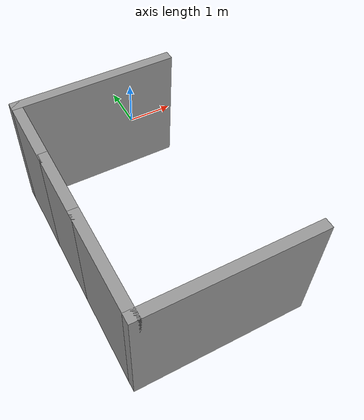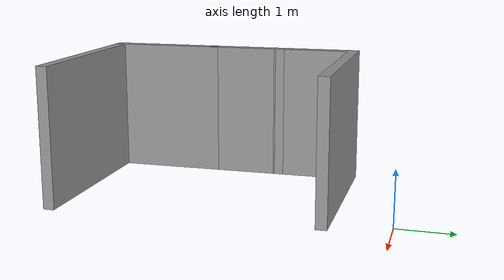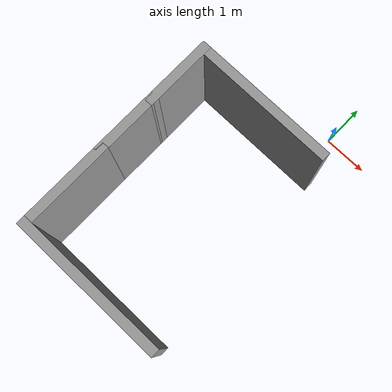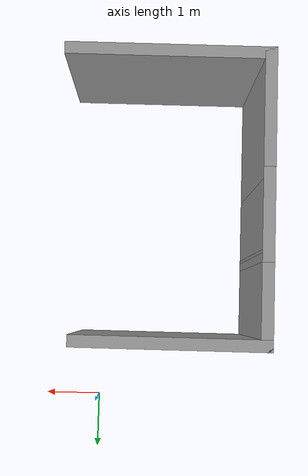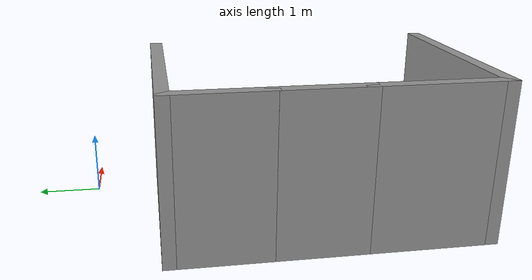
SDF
<sdf version="1.4">
 <world name="default">
  <physics type="ode">
   <max_step_size>0.001</max_step_size>
   <real_time_factor>1</real_time_factor>
   <real_time_update_rate>1000</real_time_update_rate>
   <gravity>0 0 -9.8</gravity>
  </physics>
  <scene><ambient>0.4 0.4 0.4 1</ambient><background>0.7 0.7 0.7 1</background><shadows>1</shadows></scene>
  <spherical_coordinates>
   <surface_model>EARTH_WGS84</surface_model>
   <latitude_deg>0</latitude_deg>
   <longitude_deg>0</longitude_deg>
   <elevation>0</elevation>
   <heading_deg>0</heading_deg>
  </spherical_coordinates>
  <model name="BuildingDefaultName">
   <link name="Wall_0">
    <collision name="Wall_0_Collision">
     <geometry><box><size>3.26 0.2 2.5</size></box></geometry>
     <pose>0 0 1.25 0 -0 0</pose>
    </collision>
    <visual name="Wall_0_Visual">
     <pose>0 0 1.25 0 -0 0</pose>
     <geometry><box><size>3.26 0.2 2.5</size></box></geometry>
     <material>
      <script><uri>file://media/materials/scripts/gazebo.material</uri><name>Gazebo/Grey</name></script>
     </material>
    </visual>
    <velocity_decay><linear>0</linear><angular>0</angular></velocity_decay>
    <pose>-1.26 -1.12 0 0 -0 3.14159</pose>
   </link>
   <link name="Wall_1">
    <collision name="Wall_1_Collision">
     <geometry><box><size>1.63 0.2 2.5</size></box></geometry>
     <pose>0 0 1.25 0 -0 0</pose>
    </collision>
    <visual name="Wall_1_Visual">
     <pose>0 0 1.25 0 -0 0</pose>
     <geometry><box><size>1.63 0.2 2.5</size></box></geometry>
     <material>
      <script><uri>file://media/materials/scripts/gazebo.material</uri><name>Gazebo/Grey</name></script>
     </material>
    </visual>
    <velocity_decay><linear>0</linear><angular>0</angular></velocity_decay>
    <pose>-2.79 -1.835 0 0 0 -1.5708</pose>
   </link>
   <link name="Wall_2">
    <collision name="Wall_2_Collision">
     <geometry><box><size>1.5407 0.2 2.5</size></box></geometry>
     <pose>0 0 1.25 0 -0 0</pose>
    </collision>
    <visual name="Wall_2_Visual">
     <pose>0 0 1.25 0 -0 0</pose>
     <geometry><box><size>1.5407 0.2 2.5</size></box></geometry>
     <material>
      <script><uri>file://media/materials/scripts/gazebo.material</uri><name>Gazebo/Grey</name></script>
     </material>
    </visual>
    <velocity_decay><linear>0</linear><angular>0</angular></velocity_decay>
    <pose>-2.79003 -3.22035 0 0 0 -1.57084</pose>
   </link>
   <link name="Wall_3">
    <collision name="Wall_3_Collision">
     <geometry><box><size>2.16624 0.2 2.5</size></box></geometry>
     <pose>0 0 1.25 0 -0 0</pose>
    </collision>
    <visual name="Wall_3_Visual">
     <pose>0 0 1.25 0 -0 0</pose>
     <geometry><box><size>2.16624 0.2 2.5</size></box></geometry>
     <material>
      <script><uri>file://media/materials/scripts/gazebo.material</uri><name>Gazebo/Grey</name></script>
     </material>
    </visual>
    <velocity_decay><linear>0</linear><angular>0</angular></velocity_decay>
    <pose>-2.79005 -4.87383 0 0 0 -1.5708</pose>
   </link>
   <link name="Wall_4">
    <collision name="Wall_4_Collision">
     <geometry><box><size>3.46365 0.2 2.5</size></box></geometry>
     <pose>0 0 1.25 0 -0 0</pose>
    </collision>
    <visual name="Wall_4_Visual">
     <pose>0 0 1.25 0 -0 0</pose>
     <geometry><box><size>3.46365 0.2 2.5</size></box></geometry>
     <material>
      <script><uri>file://media/materials/scripts/gazebo.material</uri><name>Gazebo/Grey</name></script>
     </material>
    </visual>
    <velocity_decay><linear>0</linear><angular>0</angular></velocity_decay>
    <pose>-1.15823 -5.85695 0 0 -0 0</pose>
   </link>
   <static>1</static>
  </model>
 </world>
</sdf>
